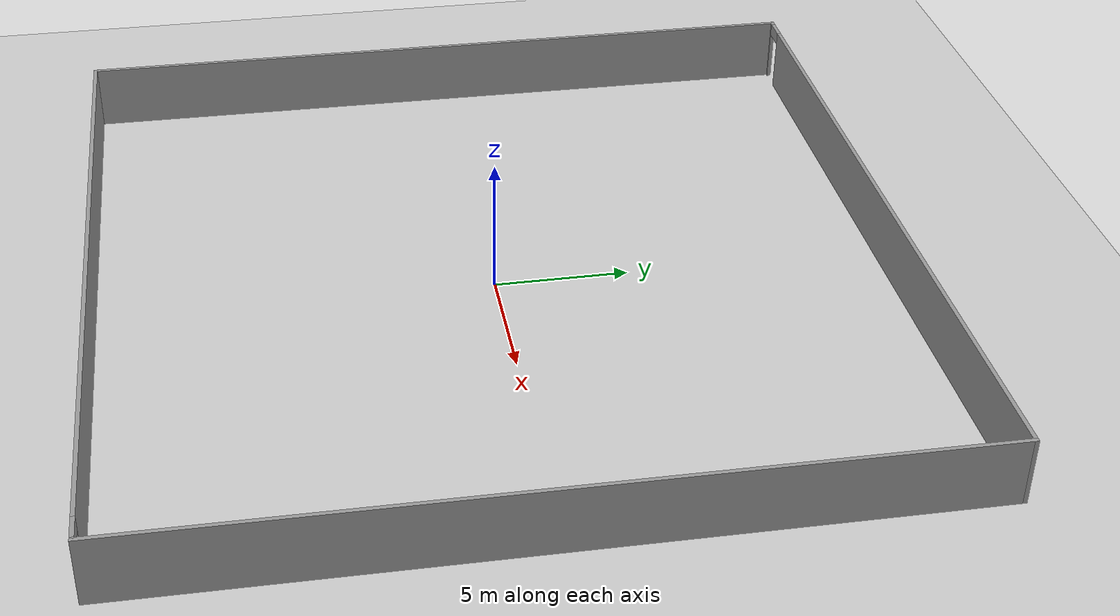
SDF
<sdf version="1.6">
 <world name="default">
  <light name="sun" type="directional">
   <pose>0 0 10 0 -0 0</pose>
   <diffuse>0.8 0.8 0.8 1</diffuse>
   <specular>0.1 0.1 0.1 1</specular>
   <attenuation>
    <range>1000</range>
    <constant>0.9</constant>
    <linear>0.01</linear>
    <quadratic>0.001</quadratic>
   </attenuation>
   <direction>-0.5 0.5 -1</direction>
  </light>
  <model name="ground_plane">
   <static>1</static>
   <link name="link">
    <collision name="collision">
     <geometry><plane><normal>0 0 1</normal><size>100 100</size></plane></geometry>
     <surface><friction><ode><mu>100</mu><mu2>50</mu2></ode></friction></surface>
    </collision>
    <visual name="visual">
     <cast_shadows>0</cast_shadows>
     <geometry><plane><normal>0 0 1</normal><size>100 100</size></plane></geometry>
     <material>
      <script><uri>file://media/materials/scripts/gazebo.material</uri><name>Gazebo/Grey</name></script>
     </material>
    </visual>
   </link>
  </model>
  <gravity>0 0 -9.8</gravity>
  <magnetic_field>6e-06 2.3e-05 -4.2e-05</magnetic_field>
  <atmosphere type="adiabatic"/>
  <physics name="default_physics" default="0" type="ode">
   <max_step_size>0.001</max_step_size>
   <real_time_factor>1</real_time_factor>
   <real_time_update_rate>1000</real_time_update_rate>
  </physics>
  <scene><ambient>0.4 0.4 0.4 1</ambient><background>0.7 0.7 0.7 1</background><shadows>1</shadows></scene>
  <spherical_coordinates>
   <surface_model>EARTH_WGS84</surface_model>
   <latitude_deg>0</latitude_deg>
   <longitude_deg>0</longitude_deg>
   <elevation>0</elevation>
   <heading_deg>0</heading_deg>
  </spherical_coordinates>
  <model name="30x302">
   <link name="Wall_6">
    <collision name="Wall_6_Collision">
     <geometry><box><size>29.25 0.15 2.5</size></box></geometry>
     <pose>0 0 1.25 0 -0 0</pose>
    </collision>
    <visual name="Wall_6_Visual">
     <pose>0 0 1.25 0 -0 0</pose>
     <geometry><box><size>29.25 0.15 2.5</size></box></geometry>
     <material>
      <script><uri>file://media/materials/scripts/gazebo.material</uri><name>Gazebo/Grey</name></script>
      <ambient>1 1 1 1</ambient>
     </material>
    </visual>
    <pose>-14.55 0 0 0 0 -1.5708</pose>
   </link>
   <link name="Wall_7">
    <pose>0 -14.55 0 0 -0 0</pose>
    <visual name="Wall_7_Visual_0">
     <pose>-0.538033 0 1.25 0 -0 0</pose>
     <geometry><box><size>28.1739 0.15 2.5</size></box></geometry>
     <material>
      <script><uri>file://media/materials/scripts/gazebo.material</uri><name>Gazebo/Grey</name></script>
      <ambient>1 1 1 1</ambient>
     </material>
    </visual>
    <collision name="Wall_7_Collision_0">
     <geometry><box><size>28.1739 0.15 2.5</size></box></geometry>
     <pose>-0.538033 0 1.25 0 -0 0</pose>
    </collision>
    <visual name="Wall_7_Visual_1">
     <pose>14.537 0 1.25 0 -0 0</pose>
     <geometry><box><size>0.176065 0.15 2.5</size></box></geometry>
     <material>
      <script><uri>file://media/materials/scripts/gazebo.material</uri><name>Gazebo/Grey</name></script>
      <ambient>1 1 1 1</ambient>
     </material>
    </visual>
    <collision name="Wall_7_Collision_1">
     <geometry><box><size>0.176065 0.15 2.5</size></box></geometry>
     <pose>14.537 0 1.25 0 -0 0</pose>
    </collision>
    <visual name="Wall_7_Visual_2">
     <pose>13.9989 0 2.25 0 -0 0</pose>
     <geometry><box><size>0.9 0.15 0.5</size></box></geometry>
     <material>
      <script><uri>file://media/materials/scripts/gazebo.material</uri><name>Gazebo/Grey</name></script>
      <ambient>1 1 1 1</ambient>
     </material>
    </visual>
    <collision name="Wall_7_Collision_2">
     <geometry><box><size>0.9 0.15 0.5</size></box></geometry>
     <pose>13.9989 0 2.25 0 -0 0</pose>
    </collision>
   </link>
   <link name="Wall_8">
    <collision name="Wall_8_Collision">
     <geometry><box><size>29.25 0.15 2.5</size></box></geometry>
     <pose>0 0 1.25 0 -0 0</pose>
    </collision>
    <visual name="Wall_8_Visual">
     <pose>0 0 1.25 0 -0 0</pose>
     <geometry><box><size>29.25 0.15 2.5</size></box></geometry>
     <material>
      <script><uri>file://media/materials/scripts/gazebo.material</uri><name>Gazebo/Grey</name></script>
      <ambient>1 1 1 1</ambient>
     </material>
    </visual>
    <pose>14.55 0 0 0 -0 1.5708</pose>
   </link>
   <link name="Wall_9">
    <pose>0 14.55 0 0 -0 3.14159</pose>
    <visual name="Wall_9_Visual_0">
     <pose>-0.570139 0 1.25 0 -0 0</pose>
     <geometry><box><size>28.1097 0.15 2.5</size></box></geometry>
     <material>
      <script><uri>file://media/materials/scripts/gazebo.material</uri><name>Gazebo/Grey</name></script>
      <ambient>1 1 1 1</ambient>
     </material>
    </visual>
    <collision name="Wall_9_Collision_0">
     <geometry><box><size>28.1097 0.15 2.5</size></box></geometry>
     <pose>-0.570139 0 1.25 0 -0 0</pose>
    </collision>
    <visual name="Wall_9_Visual_1">
     <pose>14.5049 0 1.25 0 -0 0</pose>
     <geometry><box><size>0.240279 0.15 2.5</size></box></geometry>
     <material>
      <script><uri>file://media/materials/scripts/gazebo.material</uri><name>Gazebo/Grey</name></script>
      <ambient>1 1 1 1</ambient>
     </material>
    </visual>
    <collision name="Wall_9_Collision_1">
     <geometry><box><size>0.240279 0.15 2.5</size></box></geometry>
     <pose>14.5049 0 1.25 0 -0 0</pose>
    </collision>
    <visual name="Wall_9_Visual_2">
     <pose>13.9347 0 2.25 0 -0 0</pose>
     <geometry><box><size>0.9 0.15 0.5</size></box></geometry>
     <material>
      <script><uri>file://media/materials/scripts/gazebo.material</uri><name>Gazebo/Grey</name></script>
      <ambient>1 1 1 1</ambient>
     </material>
    </visual>
    <collision name="Wall_9_Collision_2">
     <geometry><box><size>0.9 0.15 0.5</size></box></geometry>
     <pose>13.9347 0 2.25 0 -0 0</pose>
    </collision>
   </link>
   <static>1</static>
  </model>
 </world>
</sdf>
